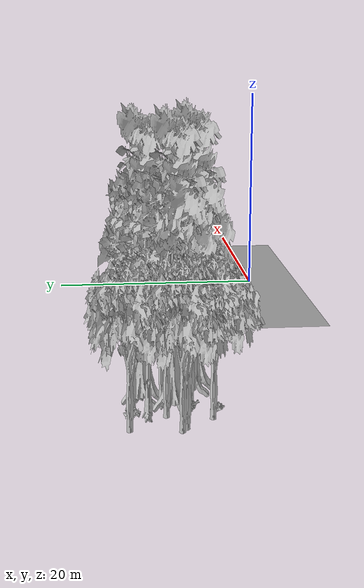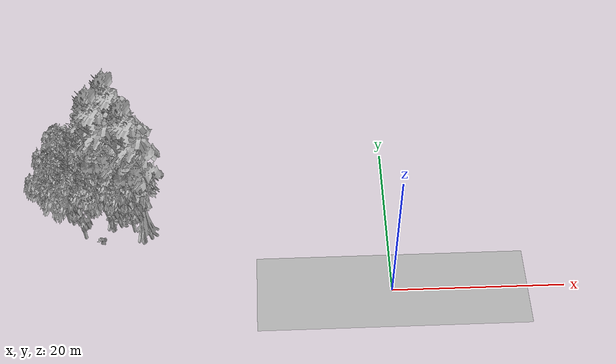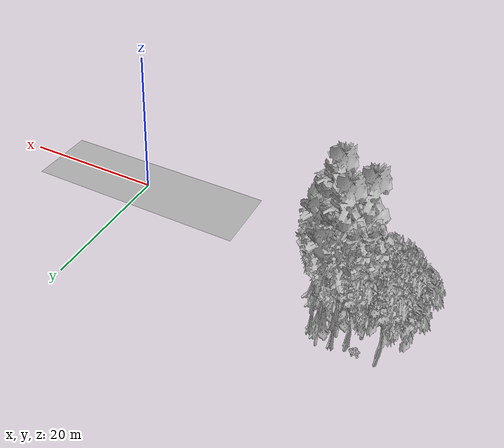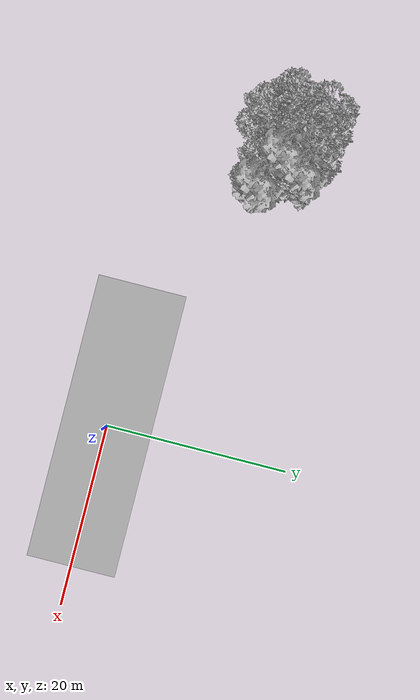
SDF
<sdf version="1.7">
 <world name="default">
  <model name="ground_plane">
   <static>1</static>
   <link name="link">
    <collision name="collision">
     <geometry><plane><normal>0 0 1</normal><size>100 100</size></plane></geometry>
     <surface><contact><ode><min_depth>0.01</min_depth><max_vel>0</max_vel></ode></contact></surface>
    </collision>
    <visual name="grass">
     <cast_shadows>0</cast_shadows>
     <geometry>
      <mesh>
       <scale>0.5814285714285714 0.18142857142857144 0.1</scale>
       <uri>file://grass_plane/meshes/grass_plane.dae</uri>
      </mesh>
     </geometry>
    </visual>
   </link>
  </model>
  <model name="Tree 20">
   <static>1</static>
   <pose>-32.43666485976108 12.16517194718622 0 1.57079 -0 0</pose>
   <link name="link">
    <collision name="collision">
     <geometry><mesh><scale>3.5 5 3.5</scale><uri>model://tree_2/meshes/tree_2.obj</uri></mesh></geometry>
    </collision>
    <visual name="visual">
     <geometry><mesh><scale>3.5 5 3.5</scale><uri>model://tree_2/meshes/tree_2.obj</uri></mesh></geometry>
    </visual>
   </link>
  </model>
  <model name="Tree 30">
   <static>1</static>
   <pose>-30.010403027288593 13.711741718345554 0 1.57079 -0 0</pose>
   <link name="link">
    <collision name="collision">
     <geometry><mesh><scale>3.5 5 3.5</scale><uri>model://tree_9/meshes/tree_9.obj</uri></mesh></geometry>
    </collision>
    <visual name="visual">
     <geometry><mesh><scale>3.5 5 3.5</scale><uri>model://tree_9/meshes/tree_9.obj</uri></mesh></geometry>
    </visual>
   </link>
  </model>
  <model name="Tree 43">
   <static>1</static>
   <pose>-37.85181156054135 14.871914971472954 0 1.57079 -0 0</pose>
   <link name="link">
    <collision name="collision">
     <geometry><mesh><scale>3.5 5 3.5</scale><uri>model://tree_2/meshes/tree_2.obj</uri></mesh></geometry>
    </collision>
    <visual name="visual">
     <geometry><mesh><scale>3.5 5 3.5</scale><uri>model://tree_2/meshes/tree_2.obj</uri></mesh></geometry>
    </visual>
   </link>
  </model>
  <model name="Tree 44">
   <static>1</static>
   <pose>-28.886781284939783 9.369906334585853 0 1.57079 -0 0</pose>
   <link name="link">
    <collision name="collision">
     <geometry><mesh><scale>3.5 5 3.5</scale><uri>model://tree_4/meshes/tree_4.obj</uri></mesh></geometry>
    </collision>
    <visual name="visual">
     <geometry><mesh><scale>3.5 5 3.5</scale><uri>model://tree_4/meshes/tree_4.obj</uri></mesh></geometry>
    </visual>
   </link>
  </model>
  <model name="Tree 91">
   <static>1</static>
   <pose>-36.12364341667569 8.72079916295943 0 1.57079 -0 0</pose>
   <link name="link">
    <collision name="collision">
     <geometry><mesh><scale>3.5 5 3.5</scale><uri>model://tree_2/meshes/tree_2.obj</uri></mesh></geometry>
    </collision>
    <visual name="visual">
     <geometry><mesh><scale>3.5 5 3.5</scale><uri>model://tree_2/meshes/tree_2.obj</uri></mesh></geometry>
    </visual>
   </link>
  </model>
  <model name="Tree 106">
   <static>1</static>
   <pose>-37.78025134270276 10.802932989211488 0 1.57079 -0 0</pose>
   <link name="link">
    <collision name="collision">
     <geometry><mesh><scale>3.5 5 3.5</scale><uri>model://tree_2/meshes/tree_2.obj</uri></mesh></geometry>
    </collision>
    <visual name="visual">
     <geometry><mesh><scale>3.5 5 3.5</scale><uri>model://tree_2/meshes/tree_2.obj</uri></mesh></geometry>
    </visual>
   </link>
  </model>
  <model name="Tree 125">
   <static>1</static>
   <pose>-38.30016315581766 11.170878686539218 0 1.57079 -0 0</pose>
   <link name="link">
    <collision name="collision">
     <geometry><mesh><scale>3.5 5 3.5</scale><uri>model://tree_2/meshes/tree_2.obj</uri></mesh></geometry>
    </collision>
    <visual name="visual">
     <geometry><mesh><scale>3.5 5 3.5</scale><uri>model://tree_2/meshes/tree_2.obj</uri></mesh></geometry>
    </visual>
   </link>
  </model>
  <model name="Tree 246">
   <static>1</static>
   <pose>-34.23280232575689 13.329634169552772 0 1.57079 -0 0</pose>
   <link name="link">
    <collision name="collision">
     <geometry><mesh><scale>3.5 5 3.5</scale><uri>model://tree_9/meshes/tree_9.obj</uri></mesh></geometry>
    </collision>
    <visual name="visual">
     <geometry><mesh><scale>3.5 5 3.5</scale><uri>model://tree_9/meshes/tree_9.obj</uri></mesh></geometry>
    </visual>
   </link>
  </model>
  <model name="Tree 298">
   <static>1</static>
   <pose>-31.055831345544632 13.550027914379296 0 1.57079 -0 0</pose>
   <link name="link">
    <collision name="collision">
     <geometry><mesh><scale>3.5 5 3.5</scale><uri>model://tree_4/meshes/tree_4.obj</uri></mesh></geometry>
    </collision>
    <visual name="visual">
     <geometry><mesh><scale>3.5 5 3.5</scale><uri>model://tree_4/meshes/tree_4.obj</uri></mesh></geometry>
    </visual>
   </link>
  </model>
  <model name="Tree 314">
   <static>1</static>
   <pose>-34.46226634359872 14.50286620799135 0 1.57079 -0 0</pose>
   <link name="link">
    <collision name="collision">
     <geometry><mesh><scale>3.5 5 3.5</scale><uri>model://tree_2/meshes/tree_2.obj</uri></mesh></geometry>
    </collision>
    <visual name="visual">
     <geometry><mesh><scale>3.5 5 3.5</scale><uri>model://tree_2/meshes/tree_2.obj</uri></mesh></geometry>
    </visual>
   </link>
  </model>
  <model name="Tree 316">
   <static>1</static>
   <pose>-31.926369479509027 11.999532293705862 0 1.57079 -0 0</pose>
   <link name="link">
    <collision name="collision">
     <geometry><mesh><scale>3.5 5 3.5</scale><uri>model://tree_9/meshes/tree_9.obj</uri></mesh></geometry>
    </collision>
    <visual name="visual">
     <geometry><mesh><scale>3.5 5 3.5</scale><uri>model://tree_9/meshes/tree_9.obj</uri></mesh></geometry>
    </visual>
   </link>
  </model>
  <model name="Tree 331">
   <static>1</static>
   <pose>-32.77319758463902 14.52015266109425 0 1.57079 -0 0</pose>
   <link name="link">
    <collision name="collision">
     <geometry><mesh><scale>3.5 5 3.5</scale><uri>model://tree_9/meshes/tree_9.obj</uri></mesh></geometry>
    </collision>
    <visual name="visual">
     <geometry><mesh><scale>3.5 5 3.5</scale><uri>model://tree_9/meshes/tree_9.obj</uri></mesh></geometry>
    </visual>
   </link>
  </model>
  <model name="Tree 349">
   <static>1</static>
   <pose>-30.364520826358046 9.510051621901994 0 1.57079 -0 0</pose>
   <link name="link">
    <collision name="collision">
     <geometry><mesh><scale>3.5 5 3.5</scale><uri>model://tree_2/meshes/tree_2.obj</uri></mesh></geometry>
    </collision>
    <visual name="visual">
     <geometry><mesh><scale>3.5 5 3.5</scale><uri>model://tree_2/meshes/tree_2.obj</uri></mesh></geometry>
    </visual>
   </link>
  </model>
  <model name="Tree 367">
   <static>1</static>
   <pose>-35.54695992203048 12.067196643867334 0 1.57079 -0 0</pose>
   <link name="link">
    <collision name="collision">
     <geometry><mesh><scale>3.5 5 3.5</scale><uri>model://tree_2/meshes/tree_2.obj</uri></mesh></geometry>
    </collision>
    <visual name="visual">
     <geometry><mesh><scale>3.5 5 3.5</scale><uri>model://tree_2/meshes/tree_2.obj</uri></mesh></geometry>
    </visual>
   </link>
  </model>
  <model name="Tree 426">
   <static>1</static>
   <pose>-32.65551033595287 11.270290110568219 0 1.57079 -0 0</pose>
   <link name="link">
    <collision name="collision">
     <geometry><mesh><scale>3.5 5 3.5</scale><uri>model://tree_4/meshes/tree_4.obj</uri></mesh></geometry>
    </collision>
    <visual name="visual">
     <geometry><mesh><scale>3.5 5 3.5</scale><uri>model://tree_4/meshes/tree_4.obj</uri></mesh></geometry>
    </visual>
   </link>
  </model>
  <model name="Tree 428">
   <static>1</static>
   <pose>-33.12527873393751 10.043640639422467 0 1.57079 -0 0</pose>
   <link name="link">
    <collision name="collision">
     <geometry><mesh><scale>3.5 5 3.5</scale><uri>model://tree_2/meshes/tree_2.obj</uri></mesh></geometry>
    </collision>
    <visual name="visual">
     <geometry><mesh><scale>3.5 5 3.5</scale><uri>model://tree_2/meshes/tree_2.obj</uri></mesh></geometry>
    </visual>
   </link>
  </model>
  <model name="Bush 12">
   <static>1</static>
   <pose>-34.08271477930403 8.13629610246074 0 1.57079 -0 0</pose>
   <link name="link">
    <collision name="collision">
     <geometry><mesh><scale>2 2 2</scale><uri>model://bush_2/meshes/bush_2.obj</uri></mesh></geometry>
     <surface><contact><collide_without_contact>false</collide_without_contact></contact></surface>
    </collision>
    <visual name="visual">
     <geometry><mesh><scale>2 2 2</scale><uri>model://bush_2/meshes/bush_2.obj</uri></mesh></geometry>
    </visual>
   </link>
  </model>
  <model name="Bush 47">
   <static>1</static>
   <pose>-35.34098530149035 14.645456127277082 0 1.57079 -0 0</pose>
   <link name="link">
    <collision name="collision">
     <geometry><mesh><scale>2 2 2</scale><uri>model://bush_3/meshes/bush_3.obj</uri></mesh></geometry>
     <surface><contact><collide_without_contact>false</collide_without_contact></contact></surface>
    </collision>
    <visual name="visual">
     <geometry><mesh><scale>2 2 2</scale><uri>model://bush_3/meshes/bush_3.obj</uri></mesh></geometry>
    </visual>
   </link>
  </model>
  <model name="Bush 49">
   <static>1</static>
   <pose>-31.304843282747168 10.622875236701688 0 1.57079 -0 0</pose>
   <link name="link">
    <collision name="collision">
     <geometry><mesh><scale>2 2 2</scale><uri>model://bush_3/meshes/bush_3.obj</uri></mesh></geometry>
     <surface><contact><collide_without_contact>false</collide_without_contact></contact></surface>
    </collision>
    <visual name="visual">
     <geometry><mesh><scale>2 2 2</scale><uri>model://bush_3/meshes/bush_3.obj</uri></mesh></geometry>
    </visual>
   </link>
  </model>
  <model name="Bush 148">
   <static>1</static>
   <pose>-32.57435756769635 10.489194750132551 0 1.57079 -0 0</pose>
   <link name="link">
    <collision name="collision">
     <geometry><mesh><scale>2 2 2</scale><uri>model://bush_0/meshes/bush_0.obj</uri></mesh></geometry>
     <surface><contact><collide_without_contact>false</collide_without_contact></contact></surface>
    </collision>
    <visual name="visual">
     <geometry><mesh><scale>2 2 2</scale><uri>model://bush_0/meshes/bush_0.obj</uri></mesh></geometry>
    </visual>
   </link>
  </model>
  <model name="Bush 201">
   <static>1</static>
   <pose>-36.01854139061139 10.581647551337827 0 1.57079 -0 0</pose>
   <link name="link">
    <collision name="collision">
     <geometry><mesh><scale>2 2 2</scale><uri>model://bush_5/meshes/bush_5.obj</uri></mesh></geometry>
     <surface><contact><collide_without_contact>false</collide_without_contact></contact></surface>
    </collision>
    <visual name="visual">
     <geometry><mesh><scale>2 2 2</scale><uri>model://bush_5/meshes/bush_5.obj</uri></mesh></geometry>
    </visual>
   </link>
  </model>
  <model name="Bush 323">
   <static>1</static>
   <pose>-31.73768520845154 11.50459011827354 0 1.57079 -0 0</pose>
   <link name="link">
    <collision name="collision">
     <geometry><mesh><scale>2 2 2</scale><uri>model://bush_3/meshes/bush_3.obj</uri></mesh></geometry>
     <surface><contact><collide_without_contact>false</collide_without_contact></contact></surface>
    </collision>
    <visual name="visual">
     <geometry><mesh><scale>2 2 2</scale><uri>model://bush_3/meshes/bush_3.obj</uri></mesh></geometry>
    </visual>
   </link>
  </model>
 </world>
</sdf>
